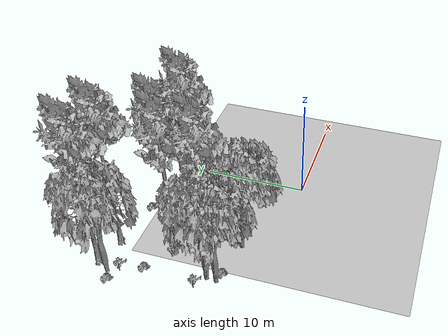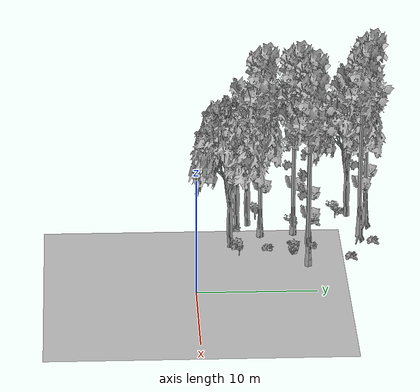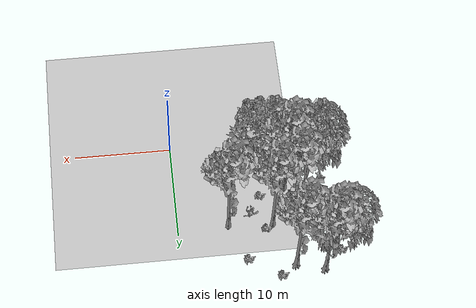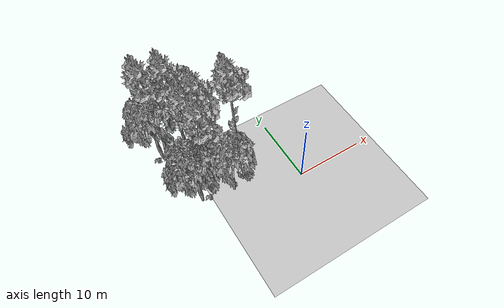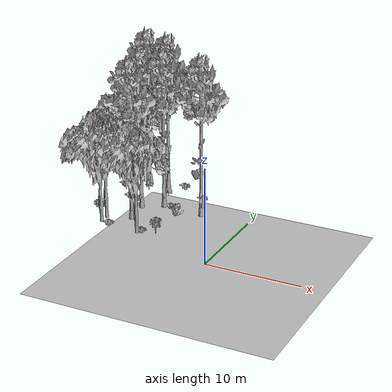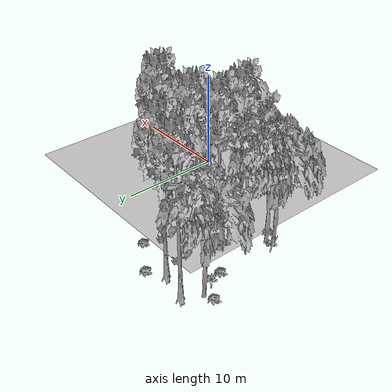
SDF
<sdf version="1.7">
 <world name="default">
  <model name="ground_plane">
   <static>1</static>
   <link name="link">
    <collision name="collision">
     <pose>-50 0 0 0 -0 0</pose>
     <geometry><plane><normal>0 0 1</normal><size>80 80</size></plane></geometry>
     <surface><contact><ode><min_depth>0.01</min_depth><max_vel>0</max_vel></ode></contact></surface>
    </collision>
    <visual name="grass">
     <cast_shadows>0</cast_shadows>
     <geometry>
      <mesh>
       <scale>0.46714285714285714 0.46714285714285714 0.1</scale>
       <uri>file://grass_plane/meshes/grass_plane.dae</uri>
      </mesh>
     </geometry>
    </visual>
   </link>
  </model>
  <model name="Tree 42">
   <static>1</static>
   <pose>-5.14439270476894 9.556141807440454 0 1.57079 -0 0</pose>
   <link name="link">
    <collision name="collision">
     <geometry><mesh><scale>3.5 5 3.5</scale><uri>model://tree_9/meshes/tree_9.obj</uri></mesh></geometry>
    </collision>
    <visual name="visual">
     <geometry><mesh><scale>3.5 5 3.5</scale><uri>model://tree_9/meshes/tree_9.obj</uri></mesh></geometry>
    </visual>
   </link>
  </model>
  <model name="Tree 55">
   <static>1</static>
   <pose>-11.70599001420635 8.663114973939308 0 1.57079 -0 0</pose>
   <link name="link">
    <collision name="collision">
     <geometry><mesh><scale>3.5 5 3.5</scale><uri>model://tree_9/meshes/tree_9.obj</uri></mesh></geometry>
    </collision>
    <visual name="visual">
     <geometry><mesh><scale>3.5 5 3.5</scale><uri>model://tree_9/meshes/tree_9.obj</uri></mesh></geometry>
    </visual>
   </link>
  </model>
  <model name="Tree 68">
   <static>1</static>
   <pose>-9.650818097119224 9.840594513562593 0 1.57079 -0 0</pose>
   <link name="link">
    <collision name="collision">
     <geometry><mesh><scale>3.5 5 3.5</scale><uri>model://tree_9/meshes/tree_9.obj</uri></mesh></geometry>
    </collision>
    <visual name="visual">
     <geometry><mesh><scale>3.5 5 3.5</scale><uri>model://tree_9/meshes/tree_9.obj</uri></mesh></geometry>
    </visual>
   </link>
  </model>
  <model name="Tree 84">
   <static>1</static>
   <pose>-14.37661160867037 15.059348470595147 0 1.57079 -0 0</pose>
   <link name="link">
    <collision name="collision">
     <geometry><mesh><scale>3.5 5 3.5</scale><uri>model://tree_9/meshes/tree_9.obj</uri></mesh></geometry>
    </collision>
    <visual name="visual">
     <geometry><mesh><scale>3.5 5 3.5</scale><uri>model://tree_9/meshes/tree_9.obj</uri></mesh></geometry>
    </visual>
   </link>
  </model>
  <model name="Tree 391">
   <static>1</static>
   <pose>-15.591427880896347 13.520049123320504 0 1.57079 -0 0</pose>
   <link name="link">
    <collision name="collision">
     <geometry><mesh><scale>3.5 5 3.5</scale><uri>model://tree_2/meshes/tree_2.obj</uri></mesh></geometry>
    </collision>
    <visual name="visual">
     <geometry><mesh><scale>3.5 5 3.5</scale><uri>model://tree_2/meshes/tree_2.obj</uri></mesh></geometry>
    </visual>
   </link>
  </model>
  <model name="Tree 494">
   <static>1</static>
   <pose>-9.342655530944562 3.1550422216387304 0 1.57079 -0 0</pose>
   <link name="link">
    <collision name="collision">
     <geometry><mesh><scale>3.5 5 3.5</scale><uri>model://tree_2/meshes/tree_2.obj</uri></mesh></geometry>
    </collision>
    <visual name="visual">
     <geometry><mesh><scale>3.5 5 3.5</scale><uri>model://tree_2/meshes/tree_2.obj</uri></mesh></geometry>
    </visual>
   </link>
  </model>
  <model name="Tree 545">
   <static>1</static>
   <pose>-13.909590965233008 3.920284422085494 0 1.57079 -0 0</pose>
   <link name="link">
    <collision name="collision">
     <geometry><mesh><scale>3.5 5 3.5</scale><uri>model://tree_2/meshes/tree_2.obj</uri></mesh></geometry>
    </collision>
    <visual name="visual">
     <geometry><mesh><scale>3.5 5 3.5</scale><uri>model://tree_2/meshes/tree_2.obj</uri></mesh></geometry>
    </visual>
   </link>
  </model>
  <model name="Tree 570">
   <static>1</static>
   <pose>-13.831427166123511 4.832445660591247 0 1.57079 -0 0</pose>
   <link name="link">
    <collision name="collision">
     <geometry><mesh><scale>3.5 5 3.5</scale><uri>model://tree_2/meshes/tree_2.obj</uri></mesh></geometry>
    </collision>
    <visual name="visual">
     <geometry><mesh><scale>3.5 5 3.5</scale><uri>model://tree_2/meshes/tree_2.obj</uri></mesh></geometry>
    </visual>
   </link>
  </model>
  <model name="Tree 596">
   <static>1</static>
   <pose>-11.316285947642807 5.819246885374156 0 1.57079 -0 0</pose>
   <link name="link">
    <collision name="collision">
     <geometry><mesh><scale>3.5 5 3.5</scale><uri>model://tree_9/meshes/tree_9.obj</uri></mesh></geometry>
    </collision>
    <visual name="visual">
     <geometry><mesh><scale>3.5 5 3.5</scale><uri>model://tree_9/meshes/tree_9.obj</uri></mesh></geometry>
    </visual>
   </link>
  </model>
  <model name="Tree 605">
   <static>1</static>
   <pose>-11.521463948758935 14.329564534921879 0 1.57079 -0 0</pose>
   <link name="link">
    <collision name="collision">
     <geometry><mesh><scale>3.5 5 3.5</scale><uri>model://tree_9/meshes/tree_9.obj</uri></mesh></geometry>
    </collision>
    <visual name="visual">
     <geometry><mesh><scale>3.5 5 3.5</scale><uri>model://tree_9/meshes/tree_9.obj</uri></mesh></geometry>
    </visual>
   </link>
  </model>
  <model name="Bush 53">
   <static>1</static>
   <pose>-7.557717723350596 8.386678173875815 0 1.57079 -0 0</pose>
   <link name="link">
    <collision name="collision">
     <geometry><mesh><scale>2 2 2</scale><uri>model://bush_4/meshes/bush_4.obj</uri></mesh></geometry>
     <surface><contact><collide_without_contact>false</collide_without_contact></contact></surface>
    </collision>
    <visual name="visual">
     <geometry><mesh><scale>2 2 2</scale><uri>model://bush_4/meshes/bush_4.obj</uri></mesh></geometry>
    </visual>
   </link>
  </model>
  <model name="Bush 64">
   <static>1</static>
   <pose>-9.064313238516508 3.7123478949174284 0 1.57079 -0 0</pose>
   <link name="link">
    <collision name="collision">
     <geometry><mesh><scale>2 2 2</scale><uri>model://bush_2/meshes/bush_2.obj</uri></mesh></geometry>
     <surface><contact><collide_without_contact>false</collide_without_contact></contact></surface>
    </collision>
    <visual name="visual">
     <geometry><mesh><scale>2 2 2</scale><uri>model://bush_2/meshes/bush_2.obj</uri></mesh></geometry>
    </visual>
   </link>
  </model>
  <model name="Bush 156">
   <static>1</static>
   <pose>-14.249656453913353 10.622149818251742 0 1.57079 -0 0</pose>
   <link name="link">
    <collision name="collision">
     <geometry><mesh><scale>2 2 2</scale><uri>model://bush_2/meshes/bush_2.obj</uri></mesh></geometry>
     <surface><contact><collide_without_contact>false</collide_without_contact></contact></surface>
    </collision>
    <visual name="visual">
     <geometry><mesh><scale>2 2 2</scale><uri>model://bush_2/meshes/bush_2.obj</uri></mesh></geometry>
    </visual>
   </link>
  </model>
  <model name="Bush 350">
   <static>1</static>
   <pose>-9.027509854890724 10.086924704500433 0 1.57079 -0 0</pose>
   <link name="link">
    <collision name="collision">
     <geometry><mesh><scale>2 2 2</scale><uri>model://bush_2/meshes/bush_2.obj</uri></mesh></geometry>
     <surface><contact><collide_without_contact>false</collide_without_contact></contact></surface>
    </collision>
    <visual name="visual">
     <geometry><mesh><scale>2 2 2</scale><uri>model://bush_2/meshes/bush_2.obj</uri></mesh></geometry>
    </visual>
   </link>
  </model>
  <model name="Bush 386">
   <static>1</static>
   <pose>-16.368564098005457 13.148943802671518 0 1.57079 -0 0</pose>
   <link name="link">
    <collision name="collision">
     <geometry><mesh><scale>2 2 2</scale><uri>model://bush_2/meshes/bush_2.obj</uri></mesh></geometry>
     <surface><contact><collide_without_contact>false</collide_without_contact></contact></surface>
    </collision>
    <visual name="visual">
     <geometry><mesh><scale>2 2 2</scale><uri>model://bush_2/meshes/bush_2.obj</uri></mesh></geometry>
    </visual>
   </link>
  </model>
  <model name="Bush 406">
   <static>1</static>
   <pose>-15.005465241169837 5.578474621033905 0 1.57079 -0 0</pose>
   <link name="link">
    <collision name="collision">
     <geometry><mesh><scale>2 2 2</scale><uri>model://bush_5/meshes/bush_5.obj</uri></mesh></geometry>
     <surface><contact><collide_without_contact>false</collide_without_contact></contact></surface>
    </collision>
    <visual name="visual">
     <geometry><mesh><scale>2 2 2</scale><uri>model://bush_5/meshes/bush_5.obj</uri></mesh></geometry>
    </visual>
   </link>
  </model>
  <model name="Bush 426">
   <static>1</static>
   <pose>-12.25546670199968 8.727431593229483 0 1.57079 -0 0</pose>
   <link name="link">
    <collision name="collision">
     <geometry><mesh><scale>2 2 2</scale><uri>model://bush_5/meshes/bush_5.obj</uri></mesh></geometry>
     <surface><contact><collide_without_contact>false</collide_without_contact></contact></surface>
    </collision>
    <visual name="visual">
     <geometry><mesh><scale>2 2 2</scale><uri>model://bush_5/meshes/bush_5.obj</uri></mesh></geometry>
    </visual>
   </link>
  </model>
  <model name="Bush 482">
   <static>1</static>
   <pose>-15.136752665995477 12.50788716304612 0 1.57079 -0 0</pose>
   <link name="link">
    <collision name="collision">
     <geometry><mesh><scale>2 2 2</scale><uri>model://bush_5/meshes/bush_5.obj</uri></mesh></geometry>
     <surface><contact><collide_without_contact>false</collide_without_contact></contact></surface>
    </collision>
    <visual name="visual">
     <geometry><mesh><scale>2 2 2</scale><uri>model://bush_5/meshes/bush_5.obj</uri></mesh></geometry>
    </visual>
   </link>
  </model>
  <model name="Bush 489">
   <static>1</static>
   <pose>-8.736971564526485 6.330375235065532 0 1.57079 -0 0</pose>
   <link name="link">
    <collision name="collision">
     <geometry><mesh><scale>2 2 2</scale><uri>model://bush_2/meshes/bush_2.obj</uri></mesh></geometry>
     <surface><contact><collide_without_contact>false</collide_without_contact></contact></surface>
    </collision>
    <visual name="visual">
     <geometry><mesh><scale>2 2 2</scale><uri>model://bush_2/meshes/bush_2.obj</uri></mesh></geometry>
    </visual>
   </link>
  </model>
  <model name="Bush 505">
   <static>1</static>
   <pose>-6.869537939259924 13.303996914855595 0 1.57079 -0 0</pose>
   <link name="link">
    <collision name="collision">
     <geometry><mesh><scale>2 2 2</scale><uri>model://bush_2/meshes/bush_2.obj</uri></mesh></geometry>
     <surface><contact><collide_without_contact>false</collide_without_contact></contact></surface>
    </collision>
    <visual name="visual">
     <geometry><mesh><scale>2 2 2</scale><uri>model://bush_2/meshes/bush_2.obj</uri></mesh></geometry>
    </visual>
   </link>
  </model>
  <model name="Bush 549">
   <static>1</static>
   <pose>-12.895554549110802 3.744332081196937 0 1.57079 -0 0</pose>
   <link name="link">
    <collision name="collision">
     <geometry><mesh><scale>2 2 2</scale><uri>model://bush_2/meshes/bush_2.obj</uri></mesh></geometry>
     <surface><contact><collide_without_contact>false</collide_without_contact></contact></surface>
    </collision>
    <visual name="visual">
     <geometry><mesh><scale>2 2 2</scale><uri>model://bush_2/meshes/bush_2.obj</uri></mesh></geometry>
    </visual>
   </link>
  </model>
  <model name="Bush 580">
   <static>1</static>
   <pose>-10.056334265119364 15.376769822273893 0 1.57079 -0 0</pose>
   <link name="link">
    <collision name="collision">
     <geometry><mesh><scale>2 2 2</scale><uri>model://bush_2/meshes/bush_2.obj</uri></mesh></geometry>
     <surface><contact><collide_without_contact>false</collide_without_contact></contact></surface>
    </collision>
    <visual name="visual">
     <geometry><mesh><scale>2 2 2</scale><uri>model://bush_2/meshes/bush_2.obj</uri></mesh></geometry>
    </visual>
   </link>
  </model>
  <model name="Bush 618">
   <static>1</static>
   <pose>-7.422369007827385 3.8702823812765956 0 1.57079 -0 0</pose>
   <link name="link">
    <collision name="collision">
     <geometry><mesh><scale>2 2 2</scale><uri>model://bush_5/meshes/bush_5.obj</uri></mesh></geometry>
     <surface><contact><collide_without_contact>false</collide_without_contact></contact></surface>
    </collision>
    <visual name="visual">
     <geometry><mesh><scale>2 2 2</scale><uri>model://bush_5/meshes/bush_5.obj</uri></mesh></geometry>
    </visual>
   </link>
  </model>
 </world>
</sdf>
